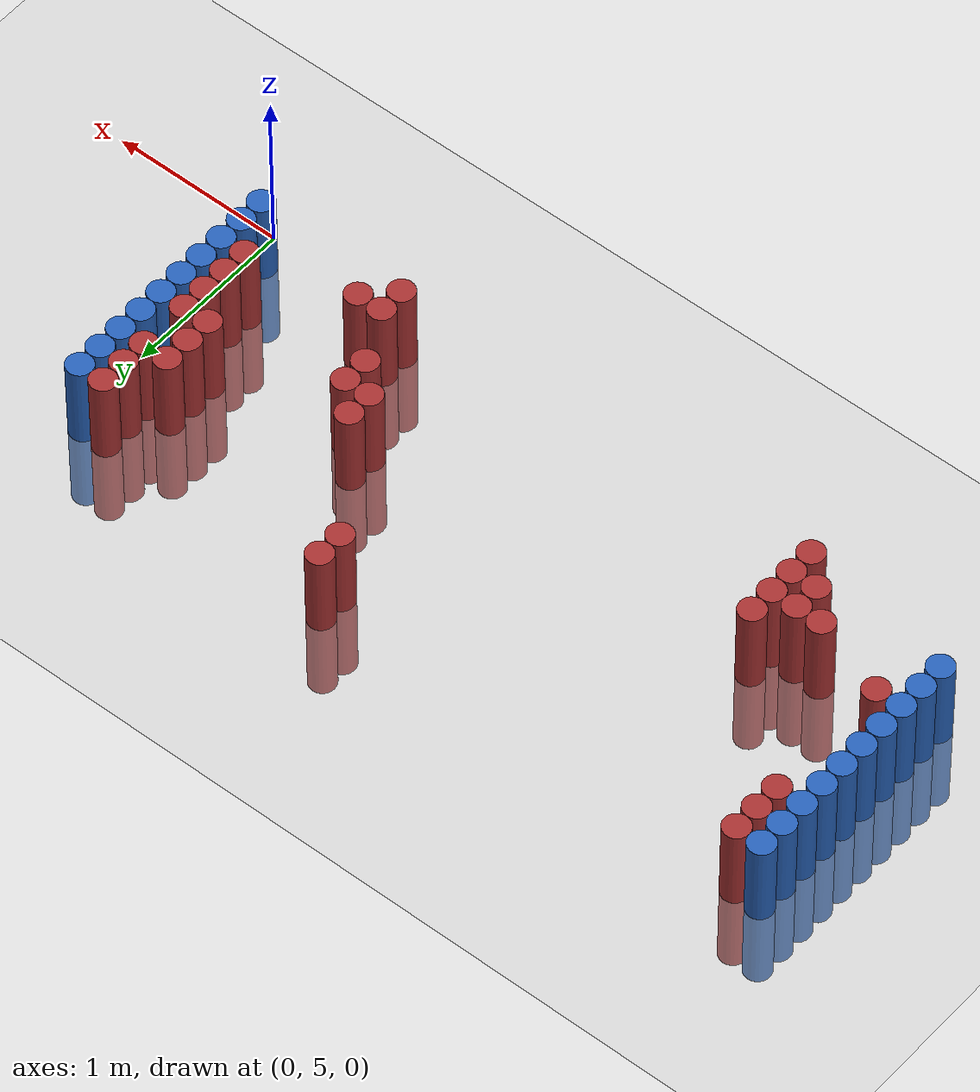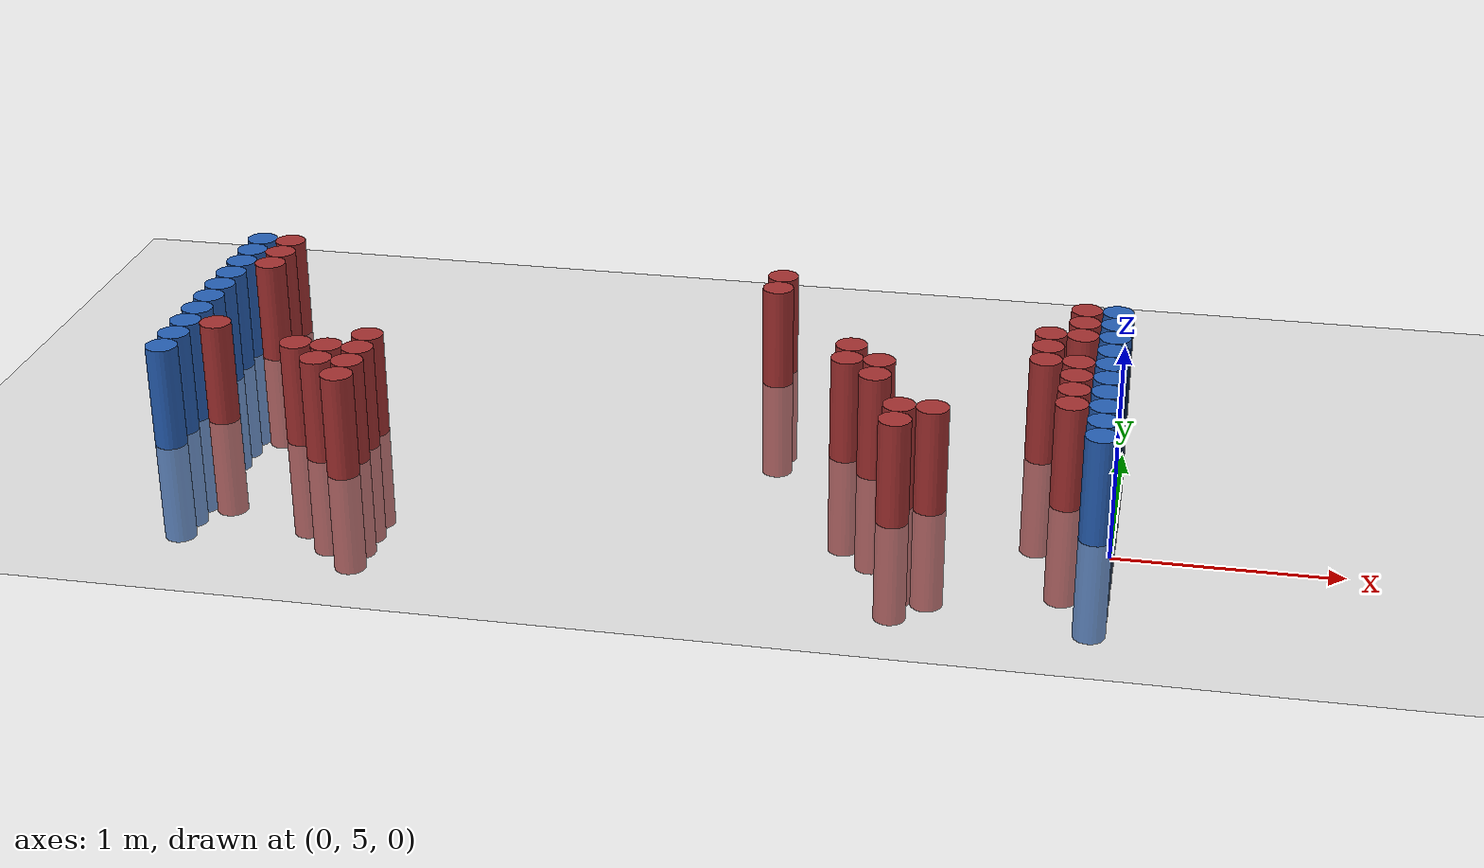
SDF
<sdf version="1.6">
 <world name="default">
  <model name="ground_plane">
   <static>1</static>
   <link name="link">
    <collision name="collision">
     <geometry><plane><normal>0 0 1</normal><size>100 100</size></plane></geometry>
     <surface><friction><ode><mu>100</mu><mu2>50</mu2></ode></friction></surface>
    </collision>
    <visual name="visual">
     <cast_shadows>0</cast_shadows>
     <geometry><plane><normal>0 0 1</normal><size>100 100</size></plane></geometry>
     <material>
      <script><uri>file://media/materials/scripts/gazebo.material</uri><name>Gazebo/Grey</name></script>
     </material>
    </visual>
   </link>
  </model>
  <model name="unit_cylinder_97">
   <static>1</static>
   <pose>-4.425000 5.325000 0.000000 0.000000 0.000000 0.000000</pose>
   <link name="link">
    <inertial>
     <mass>1</mass>
     <inertia><ixx>0.145833</ixx><ixy>0</ixy><ixz>0</ixz><iyy>0.145833</iyy><iyz>0</iyz><izz>0.125</izz></inertia>
    </inertial>
    <collision name="collision">
     <geometry><cylinder><radius>0.075000</radius><length>1</length></cylinder></geometry>
    </collision>
    <visual name="visual">
     <geometry><cylinder><radius>0.075000</radius><length>1</length></cylinder></geometry>
     <material>
      <ambient>0.152000 0.379000 0.720000 1</ambient>
      <diffuse>0.152000 0.379000 0.720000 1</diffuse>
     </material>
     <material>
      <script><name>Gazebo/Grey</name><uri>file://media/materials/scripts/gazebo.material</uri></script>
     </material>
    </visual>
   </link>
  </model>
  <model name="unit_cylinder_98">
   <static>1</static>
   <pose>-4.425000 5.475000 0.000000 0.000000 0.000000 0.000000</pose>
   <link name="link">
    <inertial>
     <mass>1</mass>
     <inertia><ixx>0.145833</ixx><ixy>0</ixy><ixz>0</ixz><iyy>0.145833</iyy><iyz>0</iyz><izz>0.125</izz></inertia>
    </inertial>
    <collision name="collision">
     <geometry><cylinder><radius>0.075000</radius><length>1</length></cylinder></geometry>
    </collision>
    <visual name="visual">
     <geometry><cylinder><radius>0.075000</radius><length>1</length></cylinder></geometry>
     <material>
      <ambient>0.152000 0.379000 0.720000 1</ambient>
      <diffuse>0.152000 0.379000 0.720000 1</diffuse>
     </material>
     <material>
      <script><name>Gazebo/Grey</name><uri>file://media/materials/scripts/gazebo.material</uri></script>
     </material>
    </visual>
   </link>
  </model>
  <model name="unit_cylinder_99">
   <static>1</static>
   <pose>-4.425000 5.625000 0.000000 0.000000 0.000000 0.000000</pose>
   <link name="link">
    <inertial>
     <mass>1</mass>
     <inertia><ixx>0.145833</ixx><ixy>0</ixy><ixz>0</ixz><iyy>0.145833</iyy><iyz>0</iyz><izz>0.125</izz></inertia>
    </inertial>
    <collision name="collision">
     <geometry><cylinder><radius>0.075000</radius><length>1</length></cylinder></geometry>
    </collision>
    <visual name="visual">
     <geometry><cylinder><radius>0.075000</radius><length>1</length></cylinder></geometry>
     <material>
      <ambient>0.152000 0.379000 0.720000 1</ambient>
      <diffuse>0.152000 0.379000 0.720000 1</diffuse>
     </material>
     <material>
      <script><name>Gazebo/Grey</name><uri>file://media/materials/scripts/gazebo.material</uri></script>
     </material>
    </visual>
   </link>
  </model>
  <model name="unit_cylinder_100">
   <static>1</static>
   <pose>-4.425000 5.775000 0.000000 0.000000 0.000000 0.000000</pose>
   <link name="link">
    <inertial>
     <mass>1</mass>
     <inertia><ixx>0.145833</ixx><ixy>0</ixy><ixz>0</ixz><iyy>0.145833</iyy><iyz>0</iyz><izz>0.125</izz></inertia>
    </inertial>
    <collision name="collision">
     <geometry><cylinder><radius>0.075000</radius><length>1</length></cylinder></geometry>
    </collision>
    <visual name="visual">
     <geometry><cylinder><radius>0.075000</radius><length>1</length></cylinder></geometry>
     <material>
      <ambient>0.152000 0.379000 0.720000 1</ambient>
      <diffuse>0.152000 0.379000 0.720000 1</diffuse>
     </material>
     <material>
      <script><name>Gazebo/Grey</name><uri>file://media/materials/scripts/gazebo.material</uri></script>
     </material>
    </visual>
   </link>
  </model>
  <model name="unit_cylinder_101">
   <static>1</static>
   <pose>-4.425000 5.925000 0.000000 0.000000 0.000000 0.000000</pose>
   <link name="link">
    <inertial>
     <mass>1</mass>
     <inertia><ixx>0.145833</ixx><ixy>0</ixy><ixz>0</ixz><iyy>0.145833</iyy><iyz>0</iyz><izz>0.125</izz></inertia>
    </inertial>
    <collision name="collision">
     <geometry><cylinder><radius>0.075000</radius><length>1</length></cylinder></geometry>
    </collision>
    <visual name="visual">
     <geometry><cylinder><radius>0.075000</radius><length>1</length></cylinder></geometry>
     <material>
      <ambient>0.152000 0.379000 0.720000 1</ambient>
      <diffuse>0.152000 0.379000 0.720000 1</diffuse>
     </material>
     <material>
      <script><name>Gazebo/Grey</name><uri>file://media/materials/scripts/gazebo.material</uri></script>
     </material>
    </visual>
   </link>
  </model>
  <model name="unit_cylinder_102">
   <static>1</static>
   <pose>-4.425000 6.075000 0.000000 0.000000 0.000000 0.000000</pose>
   <link name="link">
    <inertial>
     <mass>1</mass>
     <inertia><ixx>0.145833</ixx><ixy>0</ixy><ixz>0</ixz><iyy>0.145833</iyy><iyz>0</iyz><izz>0.125</izz></inertia>
    </inertial>
    <collision name="collision">
     <geometry><cylinder><radius>0.075000</radius><length>1</length></cylinder></geometry>
    </collision>
    <visual name="visual">
     <geometry><cylinder><radius>0.075000</radius><length>1</length></cylinder></geometry>
     <material>
      <ambient>0.152000 0.379000 0.720000 1</ambient>
      <diffuse>0.152000 0.379000 0.720000 1</diffuse>
     </material>
     <material>
      <script><name>Gazebo/Grey</name><uri>file://media/materials/scripts/gazebo.material</uri></script>
     </material>
    </visual>
   </link>
  </model>
  <model name="unit_cylinder_103">
   <static>1</static>
   <pose>-4.425000 6.225000 0.000000 0.000000 0.000000 0.000000</pose>
   <link name="link">
    <inertial>
     <mass>1</mass>
     <inertia><ixx>0.145833</ixx><ixy>0</ixy><ixz>0</ixz><iyy>0.145833</iyy><iyz>0</iyz><izz>0.125</izz></inertia>
    </inertial>
    <collision name="collision">
     <geometry><cylinder><radius>0.075000</radius><length>1</length></cylinder></geometry>
    </collision>
    <visual name="visual">
     <geometry><cylinder><radius>0.075000</radius><length>1</length></cylinder></geometry>
     <material>
      <ambient>0.152000 0.379000 0.720000 1</ambient>
      <diffuse>0.152000 0.379000 0.720000 1</diffuse>
     </material>
     <material>
      <script><name>Gazebo/Grey</name><uri>file://media/materials/scripts/gazebo.material</uri></script>
     </material>
    </visual>
   </link>
  </model>
  <model name="unit_cylinder_104">
   <static>1</static>
   <pose>-4.425000 6.375000 0.000000 0.000000 0.000000 0.000000</pose>
   <link name="link">
    <inertial>
     <mass>1</mass>
     <inertia><ixx>0.145833</ixx><ixy>0</ixy><ixz>0</ixz><iyy>0.145833</iyy><iyz>0</iyz><izz>0.125</izz></inertia>
    </inertial>
    <collision name="collision">
     <geometry><cylinder><radius>0.075000</radius><length>1</length></cylinder></geometry>
    </collision>
    <visual name="visual">
     <geometry><cylinder><radius>0.075000</radius><length>1</length></cylinder></geometry>
     <material>
      <ambient>0.152000 0.379000 0.720000 1</ambient>
      <diffuse>0.152000 0.379000 0.720000 1</diffuse>
     </material>
     <material>
      <script><name>Gazebo/Grey</name><uri>file://media/materials/scripts/gazebo.material</uri></script>
     </material>
    </visual>
   </link>
  </model>
  <model name="unit_cylinder_105">
   <static>1</static>
   <pose>-4.425000 6.525000 0.000000 0.000000 0.000000 0.000000</pose>
   <link name="link">
    <inertial>
     <mass>1</mass>
     <inertia><ixx>0.145833</ixx><ixy>0</ixy><ixz>0</ixz><iyy>0.145833</iyy><iyz>0</iyz><izz>0.125</izz></inertia>
    </inertial>
    <collision name="collision">
     <geometry><cylinder><radius>0.075000</radius><length>1</length></cylinder></geometry>
    </collision>
    <visual name="visual">
     <geometry><cylinder><radius>0.075000</radius><length>1</length></cylinder></geometry>
     <material>
      <ambient>0.152000 0.379000 0.720000 1</ambient>
      <diffuse>0.152000 0.379000 0.720000 1</diffuse>
     </material>
     <material>
      <script><name>Gazebo/Grey</name><uri>file://media/materials/scripts/gazebo.material</uri></script>
     </material>
    </visual>
   </link>
  </model>
  <model name="unit_cylinder_106">
   <static>1</static>
   <pose>-4.425000 6.675000 0.000000 0.000000 0.000000 0.000000</pose>
   <link name="link">
    <inertial>
     <mass>1</mass>
     <inertia><ixx>0.145833</ixx><ixy>0</ixy><ixz>0</ixz><iyy>0.145833</iyy><iyz>0</iyz><izz>0.125</izz></inertia>
    </inertial>
    <collision name="collision">
     <geometry><cylinder><radius>0.075000</radius><length>1</length></cylinder></geometry>
    </collision>
    <visual name="visual">
     <geometry><cylinder><radius>0.075000</radius><length>1</length></cylinder></geometry>
     <material>
      <ambient>0.152000 0.379000 0.720000 1</ambient>
      <diffuse>0.152000 0.379000 0.720000 1</diffuse>
     </material>
     <material>
      <script><name>Gazebo/Grey</name><uri>file://media/materials/scripts/gazebo.material</uri></script>
     </material>
    </visual>
   </link>
  </model>
  <model name="unit_cylinder_126">
   <static>1</static>
   <pose>-4.275000 5.625000 0.000000 0.000000 0.000000 0.000000</pose>
   <link name="link">
    <inertial>
     <mass>1</mass>
     <inertia><ixx>0.145833</ixx><ixy>0</ixy><ixz>0</ixz><iyy>0.145833</iyy><iyz>0</iyz><izz>0.125</izz></inertia>
    </inertial>
    <collision name="collision">
     <geometry><cylinder><radius>0.075000</radius><length>1</length></cylinder></geometry>
    </collision>
    <visual name="visual">
     <geometry><cylinder><radius>0.075000</radius><length>1</length></cylinder></geometry>
     <material>
      <ambient>0.648000 0.192000 0.192000 1</ambient>
      <diffuse>0.648000 0.192000 0.192000 1</diffuse>
     </material>
     <material>
      <script><name>Gazebo/Grey</name><uri>file://media/materials/scripts/gazebo.material</uri></script>
     </material>
    </visual>
   </link>
  </model>
  <model name="unit_cylinder_127">
   <static>1</static>
   <pose>-4.275000 6.375000 0.000000 0.000000 0.000000 0.000000</pose>
   <link name="link">
    <inertial>
     <mass>1</mass>
     <inertia><ixx>0.145833</ixx><ixy>0</ixy><ixz>0</ixz><iyy>0.145833</iyy><iyz>0</iyz><izz>0.125</izz></inertia>
    </inertial>
    <collision name="collision">
     <geometry><cylinder><radius>0.075000</radius><length>1</length></cylinder></geometry>
    </collision>
    <visual name="visual">
     <geometry><cylinder><radius>0.075000</radius><length>1</length></cylinder></geometry>
     <material>
      <ambient>0.648000 0.192000 0.192000 1</ambient>
      <diffuse>0.648000 0.192000 0.192000 1</diffuse>
     </material>
     <material>
      <script><name>Gazebo/Grey</name><uri>file://media/materials/scripts/gazebo.material</uri></script>
     </material>
    </visual>
   </link>
  </model>
  <model name="unit_cylinder_128">
   <static>1</static>
   <pose>-4.275000 6.525000 0.000000 0.000000 0.000000 0.000000</pose>
   <link name="link">
    <inertial>
     <mass>1</mass>
     <inertia><ixx>0.145833</ixx><ixy>0</ixy><ixz>0</ixz><iyy>0.145833</iyy><iyz>0</iyz><izz>0.125</izz></inertia>
    </inertial>
    <collision name="collision">
     <geometry><cylinder><radius>0.075000</radius><length>1</length></cylinder></geometry>
    </collision>
    <visual name="visual">
     <geometry><cylinder><radius>0.075000</radius><length>1</length></cylinder></geometry>
     <material>
      <ambient>0.648000 0.192000 0.192000 1</ambient>
      <diffuse>0.648000 0.192000 0.192000 1</diffuse>
     </material>
     <material>
      <script><name>Gazebo/Grey</name><uri>file://media/materials/scripts/gazebo.material</uri></script>
     </material>
    </visual>
   </link>
  </model>
  <model name="unit_cylinder_129">
   <static>1</static>
   <pose>-4.275000 6.675000 0.000000 0.000000 0.000000 0.000000</pose>
   <link name="link">
    <inertial>
     <mass>1</mass>
     <inertia><ixx>0.145833</ixx><ixy>0</ixy><ixz>0</ixz><iyy>0.145833</iyy><iyz>0</iyz><izz>0.125</izz></inertia>
    </inertial>
    <collision name="collision">
     <geometry><cylinder><radius>0.075000</radius><length>1</length></cylinder></geometry>
    </collision>
    <visual name="visual">
     <geometry><cylinder><radius>0.075000</radius><length>1</length></cylinder></geometry>
     <material>
      <ambient>0.648000 0.192000 0.192000 1</ambient>
      <diffuse>0.648000 0.192000 0.192000 1</diffuse>
     </material>
     <material>
      <script><name>Gazebo/Grey</name><uri>file://media/materials/scripts/gazebo.material</uri></script>
     </material>
    </visual>
   </link>
  </model>
  <model name="unit_cylinder_140">
   <static>1</static>
   <pose>-3.825000 5.475000 0.000000 0.000000 0.000000 0.000000</pose>
   <link name="link">
    <inertial>
     <mass>1</mass>
     <inertia><ixx>0.145833</ixx><ixy>0</ixy><ixz>0</ixz><iyy>0.145833</iyy><iyz>0</iyz><izz>0.125</izz></inertia>
    </inertial>
    <collision name="collision">
     <geometry><cylinder><radius>0.075000</radius><length>1</length></cylinder></geometry>
    </collision>
    <visual name="visual">
     <geometry><cylinder><radius>0.075000</radius><length>1</length></cylinder></geometry>
     <material>
      <ambient>0.648000 0.192000 0.192000 1</ambient>
      <diffuse>0.648000 0.192000 0.192000 1</diffuse>
     </material>
     <material>
      <script><name>Gazebo/Grey</name><uri>file://media/materials/scripts/gazebo.material</uri></script>
     </material>
    </visual>
   </link>
  </model>
  <model name="unit_cylinder_142">
   <static>1</static>
   <pose>-3.675000 5.325000 0.000000 0.000000 0.000000 0.000000</pose>
   <link name="link">
    <inertial>
     <mass>1</mass>
     <inertia><ixx>0.145833</ixx><ixy>0</ixy><ixz>0</ixz><iyy>0.145833</iyy><iyz>0</iyz><izz>0.125</izz></inertia>
    </inertial>
    <collision name="collision">
     <geometry><cylinder><radius>0.075000</radius><length>1</length></cylinder></geometry>
    </collision>
    <visual name="visual">
     <geometry><cylinder><radius>0.075000</radius><length>1</length></cylinder></geometry>
     <material>
      <ambient>0.648000 0.192000 0.192000 1</ambient>
      <diffuse>0.648000 0.192000 0.192000 1</diffuse>
     </material>
     <material>
      <script><name>Gazebo/Grey</name><uri>file://media/materials/scripts/gazebo.material</uri></script>
     </material>
    </visual>
   </link>
  </model>
  <model name="unit_cylinder_143">
   <static>1</static>
   <pose>-3.675000 5.475000 0.000000 0.000000 0.000000 0.000000</pose>
   <link name="link">
    <inertial>
     <mass>1</mass>
     <inertia><ixx>0.145833</ixx><ixy>0</ixy><ixz>0</ixz><iyy>0.145833</iyy><iyz>0</iyz><izz>0.125</izz></inertia>
    </inertial>
    <collision name="collision">
     <geometry><cylinder><radius>0.075000</radius><length>1</length></cylinder></geometry>
    </collision>
    <visual name="visual">
     <geometry><cylinder><radius>0.075000</radius><length>1</length></cylinder></geometry>
     <material>
      <ambient>0.648000 0.192000 0.192000 1</ambient>
      <diffuse>0.648000 0.192000 0.192000 1</diffuse>
     </material>
     <material>
      <script><name>Gazebo/Grey</name><uri>file://media/materials/scripts/gazebo.material</uri></script>
     </material>
    </visual>
   </link>
  </model>
  <model name="unit_cylinder_146">
   <static>1</static>
   <pose>-3.525000 5.175000 0.000000 0.000000 0.000000 0.000000</pose>
   <link name="link">
    <inertial>
     <mass>1</mass>
     <inertia><ixx>0.145833</ixx><ixy>0</ixy><ixz>0</ixz><iyy>0.145833</iyy><iyz>0</iyz><izz>0.125</izz></inertia>
    </inertial>
    <collision name="collision">
     <geometry><cylinder><radius>0.075000</radius><length>1</length></cylinder></geometry>
    </collision>
    <visual name="visual">
     <geometry><cylinder><radius>0.075000</radius><length>1</length></cylinder></geometry>
     <material>
      <ambient>0.648000 0.192000 0.192000 1</ambient>
      <diffuse>0.648000 0.192000 0.192000 1</diffuse>
     </material>
     <material>
      <script><name>Gazebo/Grey</name><uri>file://media/materials/scripts/gazebo.material</uri></script>
     </material>
    </visual>
   </link>
  </model>
  <model name="unit_cylinder_147">
   <static>1</static>
   <pose>-3.525000 5.325000 0.000000 0.000000 0.000000 0.000000</pose>
   <link name="link">
    <inertial>
     <mass>1</mass>
     <inertia><ixx>0.145833</ixx><ixy>0</ixy><ixz>0</ixz><iyy>0.145833</iyy><iyz>0</iyz><izz>0.125</izz></inertia>
    </inertial>
    <collision name="collision">
     <geometry><cylinder><radius>0.075000</radius><length>1</length></cylinder></geometry>
    </collision>
    <visual name="visual">
     <geometry><cylinder><radius>0.075000</radius><length>1</length></cylinder></geometry>
     <material>
      <ambient>0.648000 0.192000 0.192000 1</ambient>
      <diffuse>0.648000 0.192000 0.192000 1</diffuse>
     </material>
     <material>
      <script><name>Gazebo/Grey</name><uri>file://media/materials/scripts/gazebo.material</uri></script>
     </material>
    </visual>
   </link>
  </model>
  <model name="unit_cylinder_148">
   <static>1</static>
   <pose>-3.525000 5.475000 0.000000 0.000000 0.000000 0.000000</pose>
   <link name="link">
    <inertial>
     <mass>1</mass>
     <inertia><ixx>0.145833</ixx><ixy>0</ixy><ixz>0</ixz><iyy>0.145833</iyy><iyz>0</iyz><izz>0.125</izz></inertia>
    </inertial>
    <collision name="collision">
     <geometry><cylinder><radius>0.075000</radius><length>1</length></cylinder></geometry>
    </collision>
    <visual name="visual">
     <geometry><cylinder><radius>0.075000</radius><length>1</length></cylinder></geometry>
     <material>
      <ambient>0.648000 0.192000 0.192000 1</ambient>
      <diffuse>0.648000 0.192000 0.192000 1</diffuse>
     </material>
     <material>
      <script><name>Gazebo/Grey</name><uri>file://media/materials/scripts/gazebo.material</uri></script>
     </material>
    </visual>
   </link>
  </model>
  <model name="unit_cylinder_149">
   <static>1</static>
   <pose>-3.525000 5.625000 0.000000 0.000000 0.000000 0.000000</pose>
   <link name="link">
    <inertial>
     <mass>1</mass>
     <inertia><ixx>0.145833</ixx><ixy>0</ixy><ixz>0</ixz><iyy>0.145833</iyy><iyz>0</iyz><izz>0.125</izz></inertia>
    </inertial>
    <collision name="collision">
     <geometry><cylinder><radius>0.075000</radius><length>1</length></cylinder></geometry>
    </collision>
    <visual name="visual">
     <geometry><cylinder><radius>0.075000</radius><length>1</length></cylinder></geometry>
     <material>
      <ambient>0.648000 0.192000 0.192000 1</ambient>
      <diffuse>0.648000 0.192000 0.192000 1</diffuse>
     </material>
     <material>
      <script><name>Gazebo/Grey</name><uri>file://media/materials/scripts/gazebo.material</uri></script>
     </material>
    </visual>
   </link>
  </model>
  <model name="unit_cylinder_166">
   <static>1</static>
   <pose>-1.725000 6.525000 0.000000 0.000000 0.000000 0.000000</pose>
   <link name="link">
    <inertial>
     <mass>1</mass>
     <inertia><ixx>0.145833</ixx><ixy>0</ixy><ixz>0</ixz><iyy>0.145833</iyy><iyz>0</iyz><izz>0.125</izz></inertia>
    </inertial>
    <collision name="collision">
     <geometry><cylinder><radius>0.075000</radius><length>1</length></cylinder></geometry>
    </collision>
    <visual name="visual">
     <geometry><cylinder><radius>0.075000</radius><length>1</length></cylinder></geometry>
     <material>
      <ambient>0.648000 0.192000 0.192000 1</ambient>
      <diffuse>0.648000 0.192000 0.192000 1</diffuse>
     </material>
     <material>
      <script><name>Gazebo/Grey</name><uri>file://media/materials/scripts/gazebo.material</uri></script>
     </material>
    </visual>
   </link>
  </model>
  <model name="unit_cylinder_167">
   <static>1</static>
   <pose>-1.725000 6.675000 0.000000 0.000000 0.000000 0.000000</pose>
   <link name="link">
    <inertial>
     <mass>1</mass>
     <inertia><ixx>0.145833</ixx><ixy>0</ixy><ixz>0</ixz><iyy>0.145833</iyy><iyz>0</iyz><izz>0.125</izz></inertia>
    </inertial>
    <collision name="collision">
     <geometry><cylinder><radius>0.075000</radius><length>1</length></cylinder></geometry>
    </collision>
    <visual name="visual">
     <geometry><cylinder><radius>0.075000</radius><length>1</length></cylinder></geometry>
     <material>
      <ambient>0.648000 0.192000 0.192000 1</ambient>
      <diffuse>0.648000 0.192000 0.192000 1</diffuse>
     </material>
     <material>
      <script><name>Gazebo/Grey</name><uri>file://media/materials/scripts/gazebo.material</uri></script>
     </material>
    </visual>
   </link>
  </model>
  <model name="unit_cylinder_172">
   <static>1</static>
   <pose>-1.275000 5.775000 0.000000 0.000000 0.000000 0.000000</pose>
   <link name="link">
    <inertial>
     <mass>1</mass>
     <inertia><ixx>0.145833</ixx><ixy>0</ixy><ixz>0</ixz><iyy>0.145833</iyy><iyz>0</iyz><izz>0.125</izz></inertia>
    </inertial>
    <collision name="collision">
     <geometry><cylinder><radius>0.075000</radius><length>1</length></cylinder></geometry>
    </collision>
    <visual name="visual">
     <geometry><cylinder><radius>0.075000</radius><length>1</length></cylinder></geometry>
     <material>
      <ambient>0.648000 0.192000 0.192000 1</ambient>
      <diffuse>0.648000 0.192000 0.192000 1</diffuse>
     </material>
     <material>
      <script><name>Gazebo/Grey</name><uri>file://media/materials/scripts/gazebo.material</uri></script>
     </material>
    </visual>
   </link>
  </model>
  <model name="unit_cylinder_173">
   <static>1</static>
   <pose>-1.275000 5.925000 0.000000 0.000000 0.000000 0.000000</pose>
   <link name="link">
    <inertial>
     <mass>1</mass>
     <inertia><ixx>0.145833</ixx><ixy>0</ixy><ixz>0</ixz><iyy>0.145833</iyy><iyz>0</iyz><izz>0.125</izz></inertia>
    </inertial>
    <collision name="collision">
     <geometry><cylinder><radius>0.075000</radius><length>1</length></cylinder></geometry>
    </collision>
    <visual name="visual">
     <geometry><cylinder><radius>0.075000</radius><length>1</length></cylinder></geometry>
     <material>
      <ambient>0.648000 0.192000 0.192000 1</ambient>
      <diffuse>0.648000 0.192000 0.192000 1</diffuse>
     </material>
     <material>
      <script><name>Gazebo/Grey</name><uri>file://media/materials/scripts/gazebo.material</uri></script>
     </material>
    </visual>
   </link>
  </model>
  <model name="unit_cylinder_174">
   <static>1</static>
   <pose>-1.125000 5.625000 0.000000 0.000000 0.000000 0.000000</pose>
   <link name="link">
    <inertial>
     <mass>1</mass>
     <inertia><ixx>0.145833</ixx><ixy>0</ixy><ixz>0</ixz><iyy>0.145833</iyy><iyz>0</iyz><izz>0.125</izz></inertia>
    </inertial>
    <collision name="collision">
     <geometry><cylinder><radius>0.075000</radius><length>1</length></cylinder></geometry>
    </collision>
    <visual name="visual">
     <geometry><cylinder><radius>0.075000</radius><length>1</length></cylinder></geometry>
     <material>
      <ambient>0.648000 0.192000 0.192000 1</ambient>
      <diffuse>0.648000 0.192000 0.192000 1</diffuse>
     </material>
     <material>
      <script><name>Gazebo/Grey</name><uri>file://media/materials/scripts/gazebo.material</uri></script>
     </material>
    </visual>
   </link>
  </model>
  <model name="unit_cylinder_175">
   <static>1</static>
   <pose>-1.125000 5.775000 0.000000 0.000000 0.000000 0.000000</pose>
   <link name="link">
    <inertial>
     <mass>1</mass>
     <inertia><ixx>0.145833</ixx><ixy>0</ixy><ixz>0</ixz><iyy>0.145833</iyy><iyz>0</iyz><izz>0.125</izz></inertia>
    </inertial>
    <collision name="collision">
     <geometry><cylinder><radius>0.075000</radius><length>1</length></cylinder></geometry>
    </collision>
    <visual name="visual">
     <geometry><cylinder><radius>0.075000</radius><length>1</length></cylinder></geometry>
     <material>
      <ambient>0.648000 0.192000 0.192000 1</ambient>
      <diffuse>0.648000 0.192000 0.192000 1</diffuse>
     </material>
     <material>
      <script><name>Gazebo/Grey</name><uri>file://media/materials/scripts/gazebo.material</uri></script>
     </material>
    </visual>
   </link>
  </model>
  <model name="unit_cylinder_176">
   <static>1</static>
   <pose>-0.975000 5.175000 0.000000 0.000000 0.000000 0.000000</pose>
   <link name="link">
    <inertial>
     <mass>1</mass>
     <inertia><ixx>0.145833</ixx><ixy>0</ixy><ixz>0</ixz><iyy>0.145833</iyy><iyz>0</iyz><izz>0.125</izz></inertia>
    </inertial>
    <collision name="collision">
     <geometry><cylinder><radius>0.075000</radius><length>1</length></cylinder></geometry>
    </collision>
    <visual name="visual">
     <geometry><cylinder><radius>0.075000</radius><length>1</length></cylinder></geometry>
     <material>
      <ambient>0.648000 0.192000 0.192000 1</ambient>
      <diffuse>0.648000 0.192000 0.192000 1</diffuse>
     </material>
     <material>
      <script><name>Gazebo/Grey</name><uri>file://media/materials/scripts/gazebo.material</uri></script>
     </material>
    </visual>
   </link>
  </model>
  <model name="unit_cylinder_177">
   <static>1</static>
   <pose>-0.975000 5.325000 0.000000 0.000000 0.000000 0.000000</pose>
   <link name="link">
    <inertial>
     <mass>1</mass>
     <inertia><ixx>0.145833</ixx><ixy>0</ixy><ixz>0</ixz><iyy>0.145833</iyy><iyz>0</iyz><izz>0.125</izz></inertia>
    </inertial>
    <collision name="collision">
     <geometry><cylinder><radius>0.075000</radius><length>1</length></cylinder></geometry>
    </collision>
    <visual name="visual">
     <geometry><cylinder><radius>0.075000</radius><length>1</length></cylinder></geometry>
     <material>
      <ambient>0.648000 0.192000 0.192000 1</ambient>
      <diffuse>0.648000 0.192000 0.192000 1</diffuse>
     </material>
     <material>
      <script><name>Gazebo/Grey</name><uri>file://media/materials/scripts/gazebo.material</uri></script>
     </material>
    </visual>
   </link>
  </model>
  <model name="unit_cylinder_179">
   <static>1</static>
   <pose>-0.825000 5.325000 0.000000 0.000000 0.000000 0.000000</pose>
   <link name="link">
    <inertial>
     <mass>1</mass>
     <inertia><ixx>0.145833</ixx><ixy>0</ixy><ixz>0</ixz><iyy>0.145833</iyy><iyz>0</iyz><izz>0.125</izz></inertia>
    </inertial>
    <collision name="collision">
     <geometry><cylinder><radius>0.075000</radius><length>1</length></cylinder></geometry>
    </collision>
    <visual name="visual">
     <geometry><cylinder><radius>0.075000</radius><length>1</length></cylinder></geometry>
     <material>
      <ambient>0.648000 0.192000 0.192000 1</ambient>
      <diffuse>0.648000 0.192000 0.192000 1</diffuse>
     </material>
     <material>
      <script><name>Gazebo/Grey</name><uri>file://media/materials/scripts/gazebo.material</uri></script>
     </material>
    </visual>
   </link>
  </model>
  <model name="unit_cylinder_195">
   <static>1</static>
   <pose>-0.375000 5.925000 0.000000 0.000000 0.000000 0.000000</pose>
   <link name="link">
    <inertial>
     <mass>1</mass>
     <inertia><ixx>0.145833</ixx><ixy>0</ixy><ixz>0</ixz><iyy>0.145833</iyy><iyz>0</iyz><izz>0.125</izz></inertia>
    </inertial>
    <collision name="collision">
     <geometry><cylinder><radius>0.075000</radius><length>1</length></cylinder></geometry>
    </collision>
    <visual name="visual">
     <geometry><cylinder><radius>0.075000</radius><length>1</length></cylinder></geometry>
     <material>
      <ambient>0.648000 0.192000 0.192000 1</ambient>
      <diffuse>0.648000 0.192000 0.192000 1</diffuse>
     </material>
     <material>
      <script><name>Gazebo/Grey</name><uri>file://media/materials/scripts/gazebo.material</uri></script>
     </material>
    </visual>
   </link>
  </model>
  <model name="unit_cylinder_196">
   <static>1</static>
   <pose>-0.375000 6.075000 0.000000 0.000000 0.000000 0.000000</pose>
   <link name="link">
    <inertial>
     <mass>1</mass>
     <inertia><ixx>0.145833</ixx><ixy>0</ixy><ixz>0</ixz><iyy>0.145833</iyy><iyz>0</iyz><izz>0.125</izz></inertia>
    </inertial>
    <collision name="collision">
     <geometry><cylinder><radius>0.075000</radius><length>1</length></cylinder></geometry>
    </collision>
    <visual name="visual">
     <geometry><cylinder><radius>0.075000</radius><length>1</length></cylinder></geometry>
     <material>
      <ambient>0.648000 0.192000 0.192000 1</ambient>
      <diffuse>0.648000 0.192000 0.192000 1</diffuse>
     </material>
     <material>
      <script><name>Gazebo/Grey</name><uri>file://media/materials/scripts/gazebo.material</uri></script>
     </material>
    </visual>
   </link>
  </model>
  <model name="unit_cylinder_197">
   <static>1</static>
   <pose>-0.375000 6.225000 0.000000 0.000000 0.000000 0.000000</pose>
   <link name="link">
    <inertial>
     <mass>1</mass>
     <inertia><ixx>0.145833</ixx><ixy>0</ixy><ixz>0</ixz><iyy>0.145833</iyy><iyz>0</iyz><izz>0.125</izz></inertia>
    </inertial>
    <collision name="collision">
     <geometry><cylinder><radius>0.075000</radius><length>1</length></cylinder></geometry>
    </collision>
    <visual name="visual">
     <geometry><cylinder><radius>0.075000</radius><length>1</length></cylinder></geometry>
     <material>
      <ambient>0.648000 0.192000 0.192000 1</ambient>
      <diffuse>0.648000 0.192000 0.192000 1</diffuse>
     </material>
     <material>
      <script><name>Gazebo/Grey</name><uri>file://media/materials/scripts/gazebo.material</uri></script>
     </material>
    </visual>
   </link>
  </model>
  <model name="unit_cylinder_201">
   <static>1</static>
   <pose>-0.225000 5.475000 0.000000 0.000000 0.000000 0.000000</pose>
   <link name="link">
    <inertial>
     <mass>1</mass>
     <inertia><ixx>0.145833</ixx><ixy>0</ixy><ixz>0</ixz><iyy>0.145833</iyy><iyz>0</iyz><izz>0.125</izz></inertia>
    </inertial>
    <collision name="collision">
     <geometry><cylinder><radius>0.075000</radius><length>1</length></cylinder></geometry>
    </collision>
    <visual name="visual">
     <geometry><cylinder><radius>0.075000</radius><length>1</length></cylinder></geometry>
     <material>
      <ambient>0.648000 0.192000 0.192000 1</ambient>
      <diffuse>0.648000 0.192000 0.192000 1</diffuse>
     </material>
     <material>
      <script><name>Gazebo/Grey</name><uri>file://media/materials/scripts/gazebo.material</uri></script>
     </material>
    </visual>
   </link>
  </model>
  <model name="unit_cylinder_202">
   <static>1</static>
   <pose>-0.225000 5.625000 0.000000 0.000000 0.000000 0.000000</pose>
   <link name="link">
    <inertial>
     <mass>1</mass>
     <inertia><ixx>0.145833</ixx><ixy>0</ixy><ixz>0</ixz><iyy>0.145833</iyy><iyz>0</iyz><izz>0.125</izz></inertia>
    </inertial>
    <collision name="collision">
     <geometry><cylinder><radius>0.075000</radius><length>1</length></cylinder></geometry>
    </collision>
    <visual name="visual">
     <geometry><cylinder><radius>0.075000</radius><length>1</length></cylinder></geometry>
     <material>
      <ambient>0.648000 0.192000 0.192000 1</ambient>
      <diffuse>0.648000 0.192000 0.192000 1</diffuse>
     </material>
     <material>
      <script><name>Gazebo/Grey</name><uri>file://media/materials/scripts/gazebo.material</uri></script>
     </material>
    </visual>
   </link>
  </model>
  <model name="unit_cylinder_203">
   <static>1</static>
   <pose>-0.225000 5.775000 0.000000 0.000000 0.000000 0.000000</pose>
   <link name="link">
    <inertial>
     <mass>1</mass>
     <inertia><ixx>0.145833</ixx><ixy>0</ixy><ixz>0</ixz><iyy>0.145833</iyy><iyz>0</iyz><izz>0.125</izz></inertia>
    </inertial>
    <collision name="collision">
     <geometry><cylinder><radius>0.075000</radius><length>1</length></cylinder></geometry>
    </collision>
    <visual name="visual">
     <geometry><cylinder><radius>0.075000</radius><length>1</length></cylinder></geometry>
     <material>
      <ambient>0.648000 0.192000 0.192000 1</ambient>
      <diffuse>0.648000 0.192000 0.192000 1</diffuse>
     </material>
     <material>
      <script><name>Gazebo/Grey</name><uri>file://media/materials/scripts/gazebo.material</uri></script>
     </material>
    </visual>
   </link>
  </model>
  <model name="unit_cylinder_204">
   <static>1</static>
   <pose>-0.225000 5.925000 0.000000 0.000000 0.000000 0.000000</pose>
   <link name="link">
    <inertial>
     <mass>1</mass>
     <inertia><ixx>0.145833</ixx><ixy>0</ixy><ixz>0</ixz><iyy>0.145833</iyy><iyz>0</iyz><izz>0.125</izz></inertia>
    </inertial>
    <collision name="collision">
     <geometry><cylinder><radius>0.075000</radius><length>1</length></cylinder></geometry>
    </collision>
    <visual name="visual">
     <geometry><cylinder><radius>0.075000</radius><length>1</length></cylinder></geometry>
     <material>
      <ambient>0.648000 0.192000 0.192000 1</ambient>
      <diffuse>0.648000 0.192000 0.192000 1</diffuse>
     </material>
     <material>
      <script><name>Gazebo/Grey</name><uri>file://media/materials/scripts/gazebo.material</uri></script>
     </material>
    </visual>
   </link>
  </model>
  <model name="unit_cylinder_205">
   <static>1</static>
   <pose>-0.225000 6.225000 0.000000 0.000000 0.000000 0.000000</pose>
   <link name="link">
    <inertial>
     <mass>1</mass>
     <inertia><ixx>0.145833</ixx><ixy>0</ixy><ixz>0</ixz><iyy>0.145833</iyy><iyz>0</iyz><izz>0.125</izz></inertia>
    </inertial>
    <collision name="collision">
     <geometry><cylinder><radius>0.075000</radius><length>1</length></cylinder></geometry>
    </collision>
    <visual name="visual">
     <geometry><cylinder><radius>0.075000</radius><length>1</length></cylinder></geometry>
     <material>
      <ambient>0.648000 0.192000 0.192000 1</ambient>
      <diffuse>0.648000 0.192000 0.192000 1</diffuse>
     </material>
     <material>
      <script><name>Gazebo/Grey</name><uri>file://media/materials/scripts/gazebo.material</uri></script>
     </material>
    </visual>
   </link>
  </model>
  <model name="unit_cylinder_206">
   <static>1</static>
   <pose>-0.225000 6.375000 0.000000 0.000000 0.000000 0.000000</pose>
   <link name="link">
    <inertial>
     <mass>1</mass>
     <inertia><ixx>0.145833</ixx><ixy>0</ixy><ixz>0</ixz><iyy>0.145833</iyy><iyz>0</iyz><izz>0.125</izz></inertia>
    </inertial>
    <collision name="collision">
     <geometry><cylinder><radius>0.075000</radius><length>1</length></cylinder></geometry>
    </collision>
    <visual name="visual">
     <geometry><cylinder><radius>0.075000</radius><length>1</length></cylinder></geometry>
     <material>
      <ambient>0.648000 0.192000 0.192000 1</ambient>
      <diffuse>0.648000 0.192000 0.192000 1</diffuse>
     </material>
     <material>
      <script><name>Gazebo/Grey</name><uri>file://media/materials/scripts/gazebo.material</uri></script>
     </material>
    </visual>
   </link>
  </model>
  <model name="unit_cylinder_207">
   <static>1</static>
   <pose>-0.225000 6.525000 0.000000 0.000000 0.000000 0.000000</pose>
   <link name="link">
    <inertial>
     <mass>1</mass>
     <inertia><ixx>0.145833</ixx><ixy>0</ixy><ixz>0</ixz><iyy>0.145833</iyy><iyz>0</iyz><izz>0.125</izz></inertia>
    </inertial>
    <collision name="collision">
     <geometry><cylinder><radius>0.075000</radius><length>1</length></cylinder></geometry>
    </collision>
    <visual name="visual">
     <geometry><cylinder><radius>0.075000</radius><length>1</length></cylinder></geometry>
     <material>
      <ambient>0.648000 0.192000 0.192000 1</ambient>
      <diffuse>0.648000 0.192000 0.192000 1</diffuse>
     </material>
     <material>
      <script><name>Gazebo/Grey</name><uri>file://media/materials/scripts/gazebo.material</uri></script>
     </material>
    </visual>
   </link>
  </model>
  <model name="unit_cylinder_217">
   <static>1</static>
   <pose>-0.075000 5.175000 0.000000 0.000000 0.000000 0.000000</pose>
   <link name="link">
    <inertial>
     <mass>1</mass>
     <inertia><ixx>0.145833</ixx><ixy>0</ixy><ixz>0</ixz><iyy>0.145833</iyy><iyz>0</iyz><izz>0.125</izz></inertia>
    </inertial>
    <collision name="collision">
     <geometry><cylinder><radius>0.075000</radius><length>1</length></cylinder></geometry>
    </collision>
    <visual name="visual">
     <geometry><cylinder><radius>0.075000</radius><length>1</length></cylinder></geometry>
     <material>
      <ambient>0.152000 0.379000 0.720000 1</ambient>
      <diffuse>0.152000 0.379000 0.720000 1</diffuse>
     </material>
     <material>
      <script><name>Gazebo/Grey</name><uri>file://media/materials/scripts/gazebo.material</uri></script>
     </material>
    </visual>
   </link>
  </model>
  <model name="unit_cylinder_218">
   <static>1</static>
   <pose>-0.075000 5.325000 0.000000 0.000000 0.000000 0.000000</pose>
   <link name="link">
    <inertial>
     <mass>1</mass>
     <inertia><ixx>0.145833</ixx><ixy>0</ixy><ixz>0</ixz><iyy>0.145833</iyy><iyz>0</iyz><izz>0.125</izz></inertia>
    </inertial>
    <collision name="collision">
     <geometry><cylinder><radius>0.075000</radius><length>1</length></cylinder></geometry>
    </collision>
    <visual name="visual">
     <geometry><cylinder><radius>0.075000</radius><length>1</length></cylinder></geometry>
     <material>
      <ambient>0.152000 0.379000 0.720000 1</ambient>
      <diffuse>0.152000 0.379000 0.720000 1</diffuse>
     </material>
     <material>
      <script><name>Gazebo/Grey</name><uri>file://media/materials/scripts/gazebo.material</uri></script>
     </material>
    </visual>
   </link>
  </model>
  <model name="unit_cylinder_219">
   <static>1</static>
   <pose>-0.075000 5.475000 0.000000 0.000000 0.000000 0.000000</pose>
   <link name="link">
    <inertial>
     <mass>1</mass>
     <inertia><ixx>0.145833</ixx><ixy>0</ixy><ixz>0</ixz><iyy>0.145833</iyy><iyz>0</iyz><izz>0.125</izz></inertia>
    </inertial>
    <collision name="collision">
     <geometry><cylinder><radius>0.075000</radius><length>1</length></cylinder></geometry>
    </collision>
    <visual name="visual">
     <geometry><cylinder><radius>0.075000</radius><length>1</length></cylinder></geometry>
     <material>
      <ambient>0.152000 0.379000 0.720000 1</ambient>
      <diffuse>0.152000 0.379000 0.720000 1</diffuse>
     </material>
     <material>
      <script><name>Gazebo/Grey</name><uri>file://media/materials/scripts/gazebo.material</uri></script>
     </material>
    </visual>
   </link>
  </model>
  <model name="unit_cylinder_220">
   <static>1</static>
   <pose>-0.075000 5.625000 0.000000 0.000000 0.000000 0.000000</pose>
   <link name="link">
    <inertial>
     <mass>1</mass>
     <inertia><ixx>0.145833</ixx><ixy>0</ixy><ixz>0</ixz><iyy>0.145833</iyy><iyz>0</iyz><izz>0.125</izz></inertia>
    </inertial>
    <collision name="collision">
     <geometry><cylinder><radius>0.075000</radius><length>1</length></cylinder></geometry>
    </collision>
    <visual name="visual">
     <geometry><cylinder><radius>0.075000</radius><length>1</length></cylinder></geometry>
     <material>
      <ambient>0.152000 0.379000 0.720000 1</ambient>
      <diffuse>0.152000 0.379000 0.720000 1</diffuse>
     </material>
     <material>
      <script><name>Gazebo/Grey</name><uri>file://media/materials/scripts/gazebo.material</uri></script>
     </material>
    </visual>
   </link>
  </model>
  <model name="unit_cylinder_221">
   <static>1</static>
   <pose>-0.075000 5.775000 0.000000 0.000000 0.000000 0.000000</pose>
   <link name="link">
    <inertial>
     <mass>1</mass>
     <inertia><ixx>0.145833</ixx><ixy>0</ixy><ixz>0</ixz><iyy>0.145833</iyy><iyz>0</iyz><izz>0.125</izz></inertia>
    </inertial>
    <collision name="collision">
     <geometry><cylinder><radius>0.075000</radius><length>1</length></cylinder></geometry>
    </collision>
    <visual name="visual">
     <geometry><cylinder><radius>0.075000</radius><length>1</length></cylinder></geometry>
     <material>
      <ambient>0.152000 0.379000 0.720000 1</ambient>
      <diffuse>0.152000 0.379000 0.720000 1</diffuse>
     </material>
     <material>
      <script><name>Gazebo/Grey</name><uri>file://media/materials/scripts/gazebo.material</uri></script>
     </material>
    </visual>
   </link>
  </model>
  <model name="unit_cylinder_222">
   <static>1</static>
   <pose>-0.075000 5.925000 0.000000 0.000000 0.000000 0.000000</pose>
   <link name="link">
    <inertial>
     <mass>1</mass>
     <inertia><ixx>0.145833</ixx><ixy>0</ixy><ixz>0</ixz><iyy>0.145833</iyy><iyz>0</iyz><izz>0.125</izz></inertia>
    </inertial>
    <collision name="collision">
     <geometry><cylinder><radius>0.075000</radius><length>1</length></cylinder></geometry>
    </collision>
    <visual name="visual">
     <geometry><cylinder><radius>0.075000</radius><length>1</length></cylinder></geometry>
     <material>
      <ambient>0.152000 0.379000 0.720000 1</ambient>
      <diffuse>0.152000 0.379000 0.720000 1</diffuse>
     </material>
     <material>
      <script><name>Gazebo/Grey</name><uri>file://media/materials/scripts/gazebo.material</uri></script>
     </material>
    </visual>
   </link>
  </model>
  <model name="unit_cylinder_223">
   <static>1</static>
   <pose>-0.075000 6.075000 0.000000 0.000000 0.000000 0.000000</pose>
   <link name="link">
    <inertial>
     <mass>1</mass>
     <inertia><ixx>0.145833</ixx><ixy>0</ixy><ixz>0</ixz><iyy>0.145833</iyy><iyz>0</iyz><izz>0.125</izz></inertia>
    </inertial>
    <collision name="collision">
     <geometry><cylinder><radius>0.075000</radius><length>1</length></cylinder></geometry>
    </collision>
    <visual name="visual">
     <geometry><cylinder><radius>0.075000</radius><length>1</length></cylinder></geometry>
     <material>
      <ambient>0.152000 0.379000 0.720000 1</ambient>
      <diffuse>0.152000 0.379000 0.720000 1</diffuse>
     </material>
     <material>
      <script><name>Gazebo/Grey</name><uri>file://media/materials/scripts/gazebo.material</uri></script>
     </material>
    </visual>
   </link>
  </model>
  <model name="unit_cylinder_224">
   <static>1</static>
   <pose>-0.075000 6.225000 0.000000 0.000000 0.000000 0.000000</pose>
   <link name="link">
    <inertial>
     <mass>1</mass>
     <inertia><ixx>0.145833</ixx><ixy>0</ixy><ixz>0</ixz><iyy>0.145833</iyy><iyz>0</iyz><izz>0.125</izz></inertia>
    </inertial>
    <collision name="collision">
     <geometry><cylinder><radius>0.075000</radius><length>1</length></cylinder></geometry>
    </collision>
    <visual name="visual">
     <geometry><cylinder><radius>0.075000</radius><length>1</length></cylinder></geometry>
     <material>
      <ambient>0.152000 0.379000 0.720000 1</ambient>
      <diffuse>0.152000 0.379000 0.720000 1</diffuse>
     </material>
     <material>
      <script><name>Gazebo/Grey</name><uri>file://media/materials/scripts/gazebo.material</uri></script>
     </material>
    </visual>
   </link>
  </model>
  <model name="unit_cylinder_225">
   <static>1</static>
   <pose>-0.075000 6.375000 0.000000 0.000000 0.000000 0.000000</pose>
   <link name="link">
    <inertial>
     <mass>1</mass>
     <inertia><ixx>0.145833</ixx><ixy>0</ixy><ixz>0</ixz><iyy>0.145833</iyy><iyz>0</iyz><izz>0.125</izz></inertia>
    </inertial>
    <collision name="collision">
     <geometry><cylinder><radius>0.075000</radius><length>1</length></cylinder></geometry>
    </collision>
    <visual name="visual">
     <geometry><cylinder><radius>0.075000</radius><length>1</length></cylinder></geometry>
     <material>
      <ambient>0.152000 0.379000 0.720000 1</ambient>
      <diffuse>0.152000 0.379000 0.720000 1</diffuse>
     </material>
     <material>
      <script><name>Gazebo/Grey</name><uri>file://media/materials/scripts/gazebo.material</uri></script>
     </material>
    </visual>
   </link>
  </model>
  <model name="unit_cylinder_226">
   <static>1</static>
   <pose>-0.075000 6.525000 0.000000 0.000000 0.000000 0.000000</pose>
   <link name="link">
    <inertial>
     <mass>1</mass>
     <inertia><ixx>0.145833</ixx><ixy>0</ixy><ixz>0</ixz><iyy>0.145833</iyy><iyz>0</iyz><izz>0.125</izz></inertia>
    </inertial>
    <collision name="collision">
     <geometry><cylinder><radius>0.075000</radius><length>1</length></cylinder></geometry>
    </collision>
    <visual name="visual">
     <geometry><cylinder><radius>0.075000</radius><length>1</length></cylinder></geometry>
     <material>
      <ambient>0.152000 0.379000 0.720000 1</ambient>
      <diffuse>0.152000 0.379000 0.720000 1</diffuse>
     </material>
     <material>
      <script><name>Gazebo/Grey</name><uri>file://media/materials/scripts/gazebo.material</uri></script>
     </material>
    </visual>
   </link>
  </model>
 </world>
</sdf>
